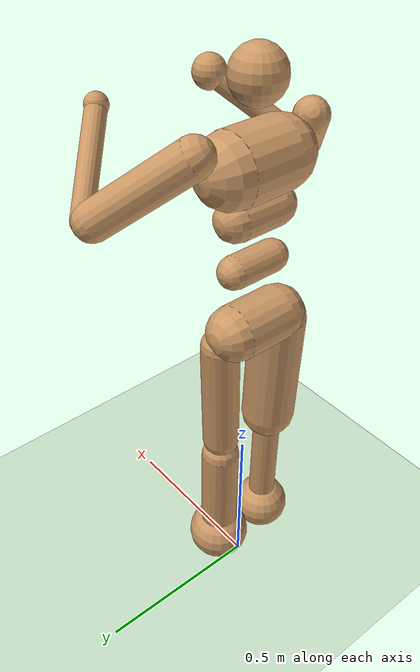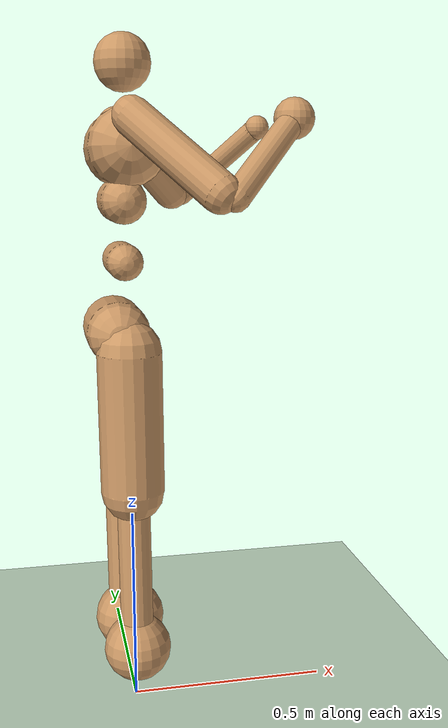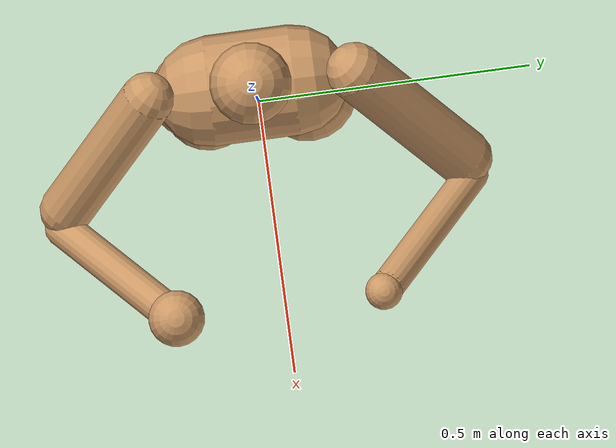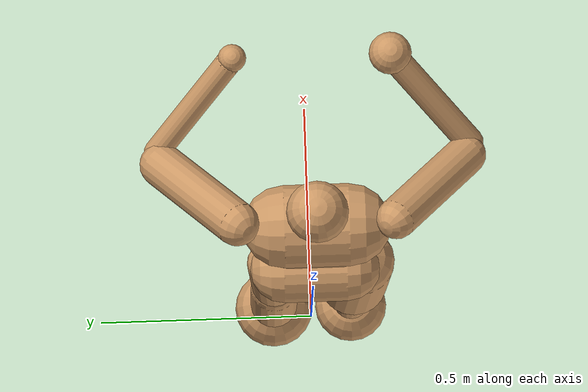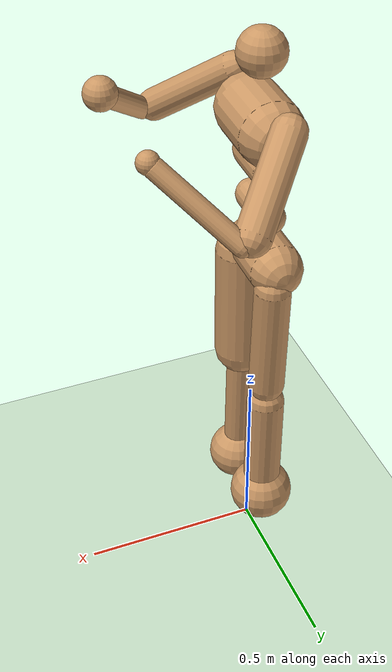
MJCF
<?xml version="1.0" encoding="utf-8"?>
<mujoco model="humanoid">
	<compiler angle="degree" inertiafromgeom="true"></compiler>
	<default>
		<joint armature="1" damping="1.222451552579341" limited="true"></joint>
		<geom conaffinity="1" condim="1" contype="1" margin="0.001" material="geom" rgba="0.8 0.6 .4 1"></geom>
		<motor ctrllimited="true" ctrlrange="-.4 .4"></motor>
	</default>
	<option integrator="RK4" iterations="50" solver="PGS" timestep="0.003"></option>
	<size nkey="5" nuser_geom="1"></size>
	<visual>
		<map fogend="5" fogstart="3"></map>
	</visual>
	<asset>
		<texture builtin="gradient" height="100" rgb1=".4 .5 .6" rgb2="0 0 0" type="skybox" width="100"></texture>
		<texture builtin="flat" height="1278" mark="cross" markrgb="1 1 1" name="texgeom" random="0.01" rgb1="0.8 0.6 0.4" rgb2="0.8 0.6 0.4" type="cube" width="127"></texture>
		<texture builtin="checker" height="100" name="texplane" rgb1="0 0 0" rgb2="0.8 0.8 0.8" type="2d" width="100"></texture>
		<material name="MatPlane" reflectance="0.5" shininess="1" specular="1" texrepeat="60 60" texture="texplane"></material>
		<material name="geom" texture="texgeom" texuniform="true"></material>
	</asset>
	<worldbody>
		<light cutoff="100" diffuse="1 1 1" dir="-0 0 -1.3" directional="true" exponent="1" pos="0 0 1.3" specular=".1 .1 .1"></light>
		<geom condim="3" friction="1.0141853866776853 0.07939590705360561 0.1256605791850925" material="MatPlane" name="floor" pos="0 0 0" rgba="0.8 0.9 0.8 1" size="21.18739239851643 20.56196659133957 0.1234147987391667" type="plane"></geom>
		<body name="torso" pos="0 0 1.4">
			<camera name="track" mode="trackcom" pos="0 -4 0" xyaxes="1 0 0 0 0 1"></camera>
			<joint armature="0" damping="0.0" limited="false" name="root" pos="0 0 0" stiffness="0.0" type="free"></joint>
			<geom fromto="0 -.07 0 0 .07 0" name="torso1" size="0.09001098359870574" type="capsule"></geom>
			<geom name="head" pos="0 0 .19" size="0.06636132257327436" type="sphere" user="258"></geom>
			<geom fromto="-.01 -.06 -.12 -.01 .06 -.12" name="uwaist" size="0.053088488594493236" type="capsule"></geom>
			<body name="lwaist" pos="-.01 0 -0.260" quat="1.000 0 -0.002 0">
				<geom fromto="0 -.06 0 0 .06 0" name="lwaist" size="0.04304019380542299" type="capsule"></geom>
				<joint armature="0.02" axis="0 0 1" damping="6.350217113179179" name="abdomen_z" pos="0 0 0.065" range="-45 45" stiffness="23.34045554336171" type="hinge"></joint>
				<joint armature="0.02" axis="0 1 0" damping="5.567436545282036" name="abdomen_y" pos="0 0 0.065" range="-75 30" stiffness="9.450380440355184" type="hinge"></joint>
				<body name="pelvis" pos="0 0 -0.165" quat="1.000 0 -0.002 0">
					<joint armature="0.02" axis="1 0 0" damping="4.887732582323493" name="abdomen_x" pos="0 0 0.1" range="-35 35" stiffness="12.969660129650073" type="hinge"></joint>
					<geom fromto="-.02 -.07 0 -.02 .07 0" name="butt" size="0.07476640534056783" type="capsule"></geom>
					<body name="right_thigh" pos="0 -0.1 -0.04">
						<joint armature="0.01" axis="1 0 0" damping="6.393030168596083" name="right_hip_x" pos="0 0 0" range="-25 5" stiffness="9.255732131464288" type="hinge"></joint>
						<joint armature="0.01" axis="0 0 1" damping="6.170002868755131" name="right_hip_z" pos="0 0 0" range="-60 35" stiffness="10.85419129966054" type="hinge"></joint>
						<joint armature="0.0080" axis="0 1 0" damping="4.1281008700627755" name="right_hip_y" pos="0 0 0" range="-110 20" stiffness="15.763978977101726" type="hinge"></joint>
						<geom fromto="0 0 0 0 0.01 -.34" name="right_thigh1" size="0.07693953719259526" type="capsule"></geom>
						<body name="right_shin" pos="0 0.01 -0.403">
							<joint armature="0.0060" axis="0 -1 0" name="right_knee" pos="0 0 .02" range="-160 -2" type="hinge"></joint>
							<geom fromto="0 0 0 0 0 -.3" name="right_shin1" size="0.04028487223574943" type="capsule"></geom>
							<body name="right_foot" pos="0 0 -0.45">
								<geom name="right_foot" pos="0 0 0.1" size="0.08306537830616886" type="sphere" user="0"></geom>
							</body>
						</body>
					</body>
					<body name="left_thigh" pos="0 0.1 -0.04">
						<joint armature="0.01" axis="-1 0 0" damping="5.017700676837997" name="left_hip_x" pos="0 0 0" range="-25 5" stiffness="10.60464599867398" type="hinge"></joint>
						<joint armature="0.01" axis="0 0 -1" damping="5.365637075430719" name="left_hip_z" pos="0 0 0" range="-60 35" stiffness="9.7842967059387" type="hinge"></joint>
						<joint armature="0.01" axis="0 1 0" damping="4.337202710082307" name="left_hip_y" pos="0 0 0" range="-110 20" stiffness="14.941437768988827" type="hinge"></joint>
						<geom fromto="0 0 0 0 -0.01 -.34" name="left_thigh1" size="0.05132858931844013" type="capsule"></geom>
						<body name="left_shin" pos="0 -0.01 -0.403">
							<joint armature="0.0060" axis="0 -1 0" name="left_knee" pos="0 0 .02" range="-160 -2" stiffness="1.1630552527706541" type="hinge"></joint>
							<geom fromto="0 0 0 0 0 -.3" name="left_shin1" size="0.05400308908251566" type="capsule"></geom>
							<body name="left_foot" pos="0 0 -0.45">
								<geom name="left_foot" type="sphere" size="0.09005262757507022" pos="0 0 0.1" user="0"></geom>
							</body>
						</body>
					</body>
				</body>
			</body>
			<body name="right_upper_arm" pos="0 -0.17 0.06">
				<joint armature="0.0068" axis="2 1 1" name="right_shoulder1" pos="0 0 0" range="-85 60" stiffness="0.9065751268041925" type="hinge"></joint>
				<joint armature="0.0051" axis="0 -1 1" name="right_shoulder2" pos="0 0 0" range="-85 60" stiffness="0.876060177730127" type="hinge"></joint>
				<geom fromto="0 0 0 .16 -.16 -.16" name="right_uarm1" size="0.04399244001745681 0.1891081510445486" type="capsule"></geom>
				<body name="right_lower_arm" pos=".18 -.18 -.18">
					<joint armature="0.0028" axis="0 -1 1" name="right_elbow" pos="0 0 0" range="-90 50" stiffness="0.0" type="hinge"></joint>
					<geom fromto="0.01 0.01 0.01 .17 .17 .17" name="right_larm" size="0.029873292460658292" type="capsule"></geom>
					<geom name="right_hand" pos=".18 .18 .18" size="0.04604027684131991" type="sphere"></geom>
					<camera pos="0 0 0"></camera>
				</body>
			</body>
			<body name="left_upper_arm" pos="0 0.17 0.06">
				<joint armature="0.0068" axis="2 -1 1" name="left_shoulder1" pos="0 0 0" range="-60 85" stiffness="0.7208098443079791" type="hinge"></joint>
				<joint armature="0.0051" axis="0 1 1" name="left_shoulder2" pos="0 0 0" range="-60 85" stiffness="0.8259934711139051" type="hinge"></joint>
				<geom fromto="0 0 0 .16 .16 -.16" name="left_uarm1" size="0.047893673793173955 0.12316310666817604" type="capsule"></geom>
				<body name="left_lower_arm" pos=".18 .18 -.18">
					<joint armature="0.0028" axis="0 -1 -1" name="left_elbow" pos="0 0 0" range="-90 50" stiffness="0.0" type="hinge"></joint>
					<geom fromto="0.01 -0.01 0.01 .17 -.17 .17" name="left_larm" size="0.027602439492446538" type="capsule"></geom>
					<geom name="left_hand" pos=".18 -.18 .18" size="0.03048305399924392" type="sphere"></geom>
				</body>
			</body>
		</body>
	</worldbody>
	<tendon>
		<fixed name="left_hipknee">
			<joint coef="-1" joint="left_hip_y"></joint>
			<joint coef="1" joint="left_knee"></joint>
		</fixed>
		<fixed name="right_hipknee">
			<joint coef="-1" joint="right_hip_y"></joint>
			<joint coef="1" joint="right_knee"></joint>
		</fixed>
	</tendon>
	<actuator>
		<motor gear="100" joint="abdomen_y" name="abdomen_y"></motor>
		<motor gear="100" joint="abdomen_z" name="abdomen_z"></motor>
		<motor gear="100" joint="abdomen_x" name="abdomen_x"></motor>
		<motor gear="100" joint="right_hip_x" name="right_hip_x"></motor>
		<motor gear="100" joint="right_hip_z" name="right_hip_z"></motor>
		<motor gear="300" joint="right_hip_y" name="right_hip_y"></motor>
		<motor gear="200" joint="right_knee" name="right_knee"></motor>
		<motor gear="100" joint="left_hip_x" name="left_hip_x"></motor>
		<motor gear="100" joint="left_hip_z" name="left_hip_z"></motor>
		<motor gear="300" joint="left_hip_y" name="left_hip_y"></motor>
		<motor gear="200" joint="left_knee" name="left_knee"></motor>
		<motor gear="25" joint="right_shoulder1" name="right_shoulder1"></motor>
		<motor gear="25" joint="right_shoulder2" name="right_shoulder2"></motor>
		<motor gear="25" joint="right_elbow" name="right_elbow"></motor>
		<motor gear="25" joint="left_shoulder1" name="left_shoulder1"></motor>
		<motor gear="25" joint="left_shoulder2" name="left_shoulder2"></motor>
		<motor gear="25" joint="left_elbow" name="left_elbow"></motor>
	</actuator>
</mujoco>
